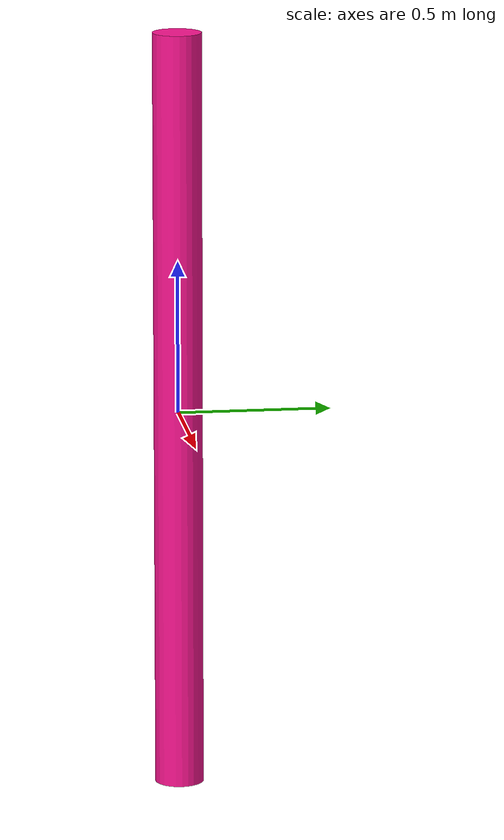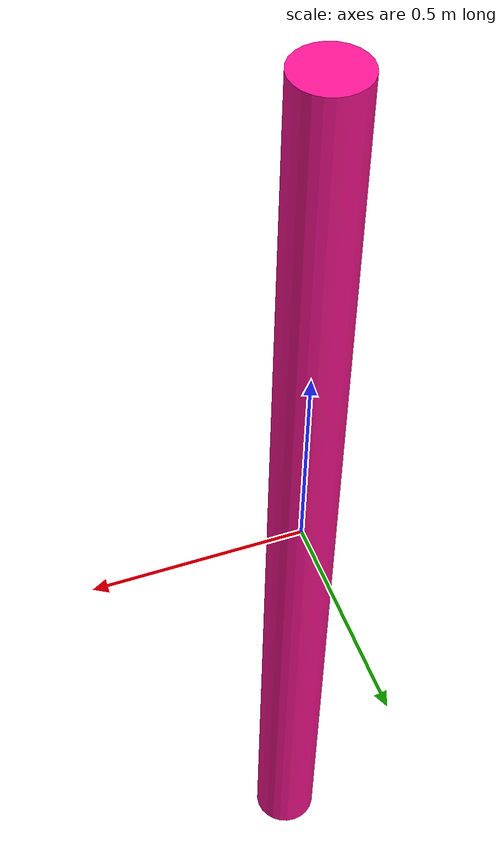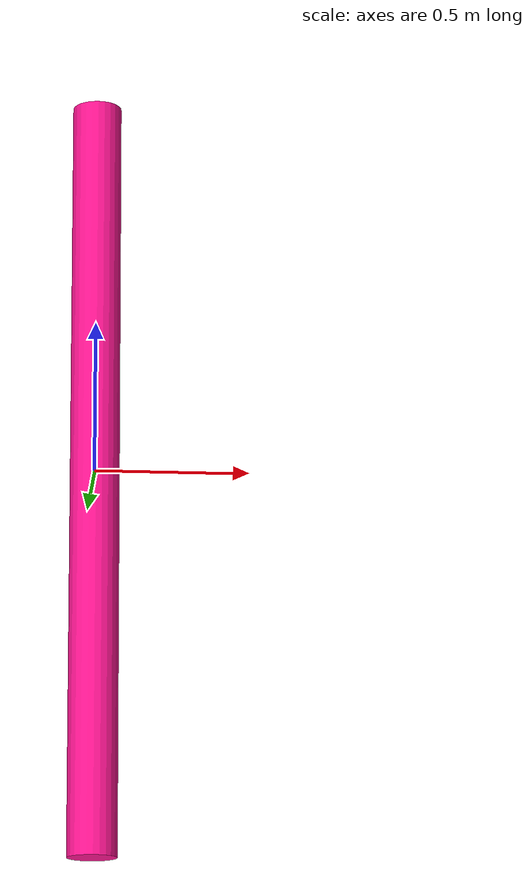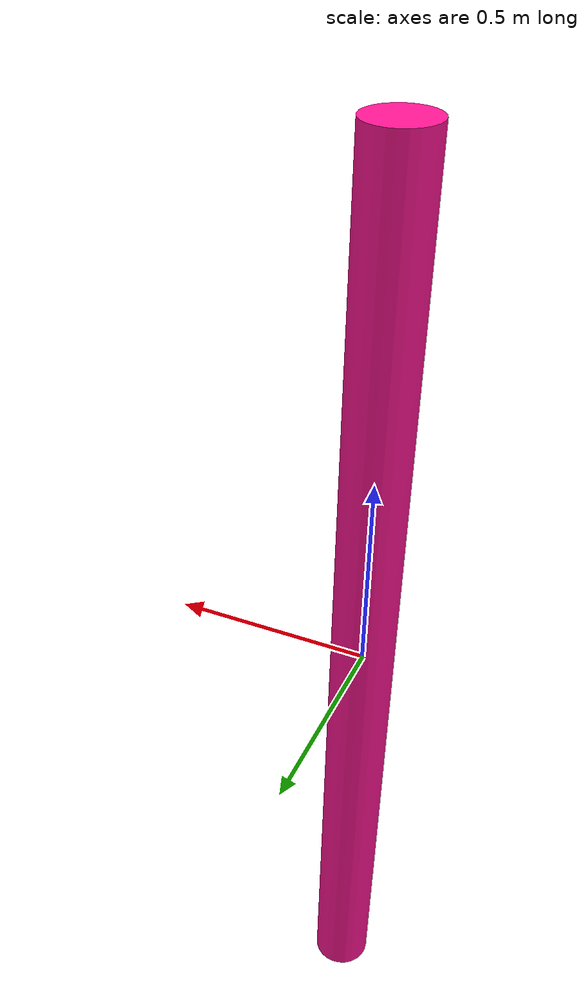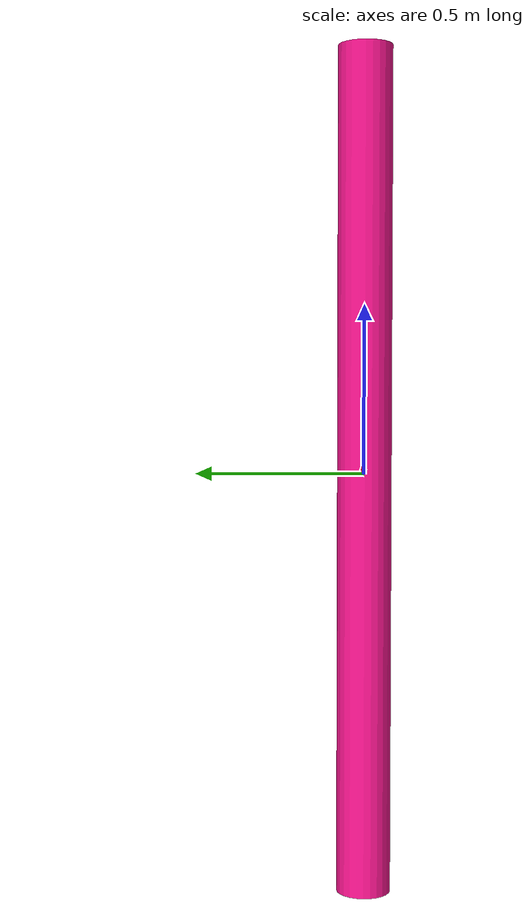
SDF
<?xml version='1.0' encoding='utf-8'?>
<sdf version='1.9'>
  <model name='pole'>
    <pose>0 0 0 0 0 0</pose>
    <link name='cylinder_link'>
      <collision name='cylinder_collision'>
        <geometry>
            <cylinder>
              <radius>0.08</radius>
              <length>2.5</length>
            </cylinder>
          </geometry>
        <surface>
          <friction>
            <ode/>
          </friction>
          <bounce/>
          <contact/>
        </surface>
      </collision>
      <visual name='cylinder_visual'>
          <geometry>
            <cylinder>
              <radius>0.08</radius>
              <length>2.5</length>
            </cylinder>
          </geometry>
          <material>
          <ambient>1 0.078 0.576 1</ambient>
          <diffuse>1 0.078 0.576 1</diffuse>
          <specular>0.5 0.5 0.5 1</specular>
        </material>
        </visual>
      <pose>0 0 0 0 0 0</pose>
      <enable_wind>false</enable_wind>
    </link>
    <static>true</static>
    <self_collide>false</self_collide>
  </model>
</sdf>
